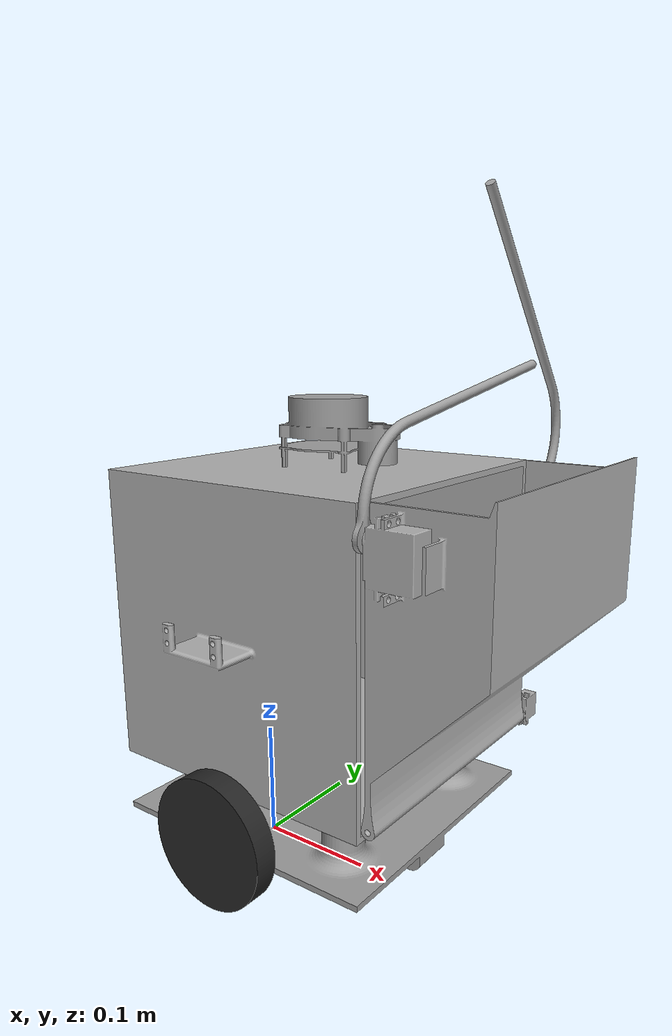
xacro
<?xml version="1.0" ?>
<robot name="wall_e" xmlns:xacro="http://www.ros.org/wiki/xacro">

<xacro:include filename="$(find wall_e_description)/urdf/materials.xacro" />
<xacro:include filename="$(find wall_e_description)/urdf/wall_e.trans" />
<xacro:include filename="$(find wall_e_description)/urdf/wall_e.gazebo" />
<link name="base_link">
  <inertial>
    <origin xyz="0.03306922009986352 0.04109957889568825 0.041731230355942464" rpy="0 0 0"/>
    <mass value="4.787456478250945"/>
    <inertia ixx="0.027048" iyy="0.030516" izz="0.054315" ixy="-0.0" iyz="0.0" ixz="-0.0"/>
  </inertial>
  <visual>
    <origin xyz="0 0 0" rpy="0 0 0"/>
    <geometry>
      <mesh filename="package://wall_e_description/meshes/base_link.stl" scale="0.001 0.001 0.001"/>
    </geometry>
    <material name="steel_satin"/>
  </visual>
  <collision>
    <origin xyz="0 0 0" rpy="0 0 0"/>
    <geometry>
      <mesh filename="package://wall_e_description/meshes/base_link.stl" scale="0.001 0.001 0.001"/>
    </geometry>
  </collision>
</link>

<link name="right_wheel">
  <inertial>
    <origin xyz="2.2009986355014943e-07 -0.010000421104311583 -9.144214505041326e-08" rpy="0 0 0"/>
    <mass value="0.17676171065422966"/>
    <inertia ixx="0.00014" iyy="0.000267" izz="0.00014" ixy="0.0" iyz="-0.0" ixz="-0.0"/>
  </inertial>
  <visual>
    <origin xyz="-0.033069 0.0939 -0.053887" rpy="0 0 0"/>
    <geometry>
      <mesh filename="package://wall_e_description/meshes/right_wheel_1.stl" scale="0.001 0.001 0.001"/>
    </geometry>
    <material name="rubber_soft"/>
  </visual>
  <collision>
    <origin xyz="-0.033069 0.0939 -0.053887" rpy="0 0 0"/>
    <geometry>
      <mesh filename="package://wall_e_description/meshes/right_wheel_1.stl" scale="0.001 0.001 0.001"/>
    </geometry>
  </collision>
</link>

<link name="left_wheel">
  <inertial>
    <origin xyz="2.2009986355014943e-07 0.009999578895688033 -9.144214514755777e-08" rpy="0 0 0"/>
    <mass value="0.17676171065422966"/>
    <inertia ixx="0.00014" iyy="0.000267" izz="0.00014" ixy="-0.0" iyz="0.0" ixz="-0.0"/>
  </inertial>
  <visual>
    <origin xyz="-0.033069 -0.1761 -0.053887" rpy="0 0 0"/>
    <geometry>
      <mesh filename="package://wall_e_description/meshes/left_wheel_1.stl" scale="0.001 0.001 0.001"/>
    </geometry>
    <material name="rubber_soft"/>
  </visual>
  <collision>
    <origin xyz="-0.033069 -0.1761 -0.053887" rpy="0 0 0"/>
    <geometry>
      <mesh filename="package://wall_e_description/meshes/left_wheel_1.stl" scale="0.001 0.001 0.001"/>
    </geometry>
  </collision>
</link>

<link name="bin">
  <inertial>
    <origin xyz="-0.02250444308386567 0.00039161684009678815 0.17469329123226662" rpy="0 0 0"/>
    <mass value="12.102199401060787"/>
    <inertia ixx="0.219187" iyy="0.186064" izz="0.190176" ixy="-0.000701" iyz="0.000516" ixz="0.000585"/>
  </inertial>
  <visual>
    <origin xyz="-0.033069 -0.0411 -0.035387" rpy="0 0 0"/>
    <geometry>
      <mesh filename="package://wall_e_description/meshes/bin_1.stl" scale="0.001 0.001 0.001"/>
    </geometry>
    <material name="silver_default"/>
  </visual>
  <collision>
    <origin xyz="-0.033069 -0.0411 -0.035387" rpy="0 0 0"/>
    <geometry>
      <mesh filename="package://wall_e_description/meshes/bin_1.stl" scale="0.001 0.001 0.001"/>
    </geometry>
  </collision>
</link>

<link name="ydlidar_x4">
  <inertial>
    <origin xyz="0.012454197152355635 -4.2110431169861684e-07 0.03520105078064689" rpy="0 0 0"/>
    <mass value="1.1515616542314233"/>
    <inertia ixx="0.000489" iyy="0.000861" izz="0.000987" ixy="-0.0" iyz="0.0" ixz="0.000148"/>
  </inertial>
  <visual>
    <origin xyz="-0.033069 -0.0411 -0.365387" rpy="0 0 0"/>
    <geometry>
      <mesh filename="package://wall_e_description/meshes/ydlidar_x4_1.stl" scale="0.001 0.001 0.001"/>
    </geometry>
    <material name="steel_satin"/>
  </visual>
  <collision>
    <origin xyz="-0.033069 -0.0411 -0.335387" rpy="0 0 0"/>
    <geometry>
      <mesh filename="package://wall_e_description/meshes/ydlidar_x4_1.stl" scale="0.001 0.001 0.001"/>
    </geometry>
  </collision>
</link>

<link name="pan">
  <inertial>
    <origin xyz="0.04822559678907379 -0.11607817913674341 0.13061240970754556" rpy="0 0 0"/>
    <mass value="3.94125611807655"/>
    <inertia ixx="0.051476" iyy="0.025721" izz="0.03521" ixy="-8.7e-05" iyz="9.5e-05" ixz="-0.006231"/>
  </inertial>
  <visual>
    <origin xyz="-0.164169 -0.157 -0.095987" rpy="0 0 0"/>
    <geometry>
      <mesh filename="package://wall_e_description/meshes/pan__1__1.stl" scale="0.001 0.001 0.001"/>
    </geometry>
    <material name="silver_default"/>
  </visual>
  <collision>
    <origin xyz="-0.164169 -0.157 -0.095987" rpy="0 0 0"/>
    <geometry>
      <mesh filename="package://wall_e_description/meshes/pan__1__1.stl" scale="0.001 0.001 0.001"/>
    </geometry>
  </collision>
</link>

<link name="pan_left_arm">
  <inertial>
    <origin xyz="0.003000245244439148 -0.026606315345525516 0.11294972426483924" rpy="0 0 0"/>
    <mass value="0.10558276566640609"/>
    <inertia ixx="0.000719" iyy="0.000526" izz="0.000194" ixy="0.0" iyz="0.000294" ixz="0.0"/>
  </inertial>
  <visual>
    <origin xyz="-0.168469 -0.171 -0.312605" rpy="0 0 0"/>
    <geometry>
      <mesh filename="package://wall_e_description/meshes/pan_left_arm_1.stl" scale="0.001 0.001 0.001"/>
    </geometry>
    <material name="steel_satin"/>
  </visual>
  <collision>
    <origin xyz="-0.168469 -0.171 -0.312605" rpy="0 0 0"/>
    <geometry>
      <mesh filename="package://wall_e_description/meshes/pan_left_arm_1.stl" scale="0.001 0.001 0.001"/>
    </geometry>
  </collision>
</link>

<link name="pan_right_arm">
  <inertial>
    <origin xyz="0.003000194955287777 0.09335605146506651 0.06644584618966343" rpy="0 0 0"/>
    <mass value="0.10558276566640609"/>
    <inertia ixx="0.000719" iyy="9.9e-05" izz="0.00062" ixy="-0.0" iyz="-0.000215" ixz="-0.0"/>
  </inertial>
  <visual>
    <origin xyz="-0.165969 0.09 -0.314825" rpy="0 0 0"/>
    <geometry>
      <mesh filename="package://wall_e_description/meshes/pan_right_arm_1.stl" scale="0.001 0.001 0.001"/>
    </geometry>
    <material name="steel_satin"/>
  </visual>
  <collision>
    <origin xyz="-0.165969 0.09 -0.314825" rpy="0 0 0"/>
    <geometry>
      <mesh filename="package://wall_e_description/meshes/pan_right_arm_1.stl" scale="0.001 0.001 0.001"/>
    </geometry>
  </collision>
</link>

<joint name="right_drive" type="continuous">
  <origin xyz="0.033069 -0.0939 0.053887" rpy="0 0 0"/>
  <parent link="base_link"/>
  <child link="right_wheel"/>
  <axis xyz="-0.0 1.0 0.0"/>
</joint>

<joint name="left_drive" type="continuous">
  <origin xyz="0.033069 0.1761 0.053887" rpy="0 0 0"/>
  <parent link="base_link"/>
  <child link="left_wheel"/>
  <axis xyz="0.0 1.0 -0.0"/>
</joint>

<joint name="Rigid4" type="fixed">
  <origin xyz="0.033069 0.0411 0.035387" rpy="0 0 0"/>
  <parent link="base_link"/>
  <child link="bin"/>
</joint>

<joint name="Rigid7" type="fixed">
  <origin xyz="0.0 0.0 0.33" rpy="0 0 0"/>
  <parent link="bin"/>
  <child link="ydlidar_x4"/>
</joint>

<joint name="pan_joint" type="revolute">
  <origin xyz="0.1311 0.1159 0.0606" rpy="0 0 0"/>
  <parent link="bin"/>
  <child link="pan"/>
  <axis xyz="0.0 1.0 0.0"/>
  <limit upper="1.570796" lower="0.0" effort="100" velocity="0.1"/>
</joint>

<joint name="left_arm" type="revolute">
  <origin xyz="0.0043 0.014 0.216618" rpy="0 0 0"/>
  <parent link="pan"/>
  <child link="pan_left_arm"/>
  <axis xyz="-1.0 -0.0 -0.0"/>
  <limit upper="2.792527" lower="-0.785398" effort="100" velocity="100"/>
</joint>

<joint name="right_arm" type="revolute">
  <origin xyz="0.0018 -0.247 0.218838" rpy="0 0 0"/>
  <parent link="pan"/>
  <child link="pan_right_arm"/>
  <axis xyz="-1.0 -0.0 -0.0"/>
  <limit upper="0.087266" lower="-3.490659" effort="100" velocity="100"/>
</joint>

</robot>

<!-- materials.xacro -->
<robot name="wall_e" xmlns:xacro="http://www.ros.org/wiki/xacro" >

<material name="silver_default">
  <color rgba="0.700 0.700 0.700 1.000"/>
</material>
<material name="steel_satin">
  <color rgba="0.6274509803921569 0.6274509803921569 0.6274509803921569 1.0"/>
</material>
<material name="rubber_soft">
  <color rgba="0.15294117647058825 0.15294117647058825 0.15294117647058825 1.0"/>
</material>

</robot>

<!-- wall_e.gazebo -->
<robot name="wall_e" xmlns:xacro="http://www.ros.org/wiki/xacro" >

<xacro:property name="body_color" value="Gazebo/Silver" />

<gazebo>
  <plugin name="control" filename="libgazebo_ros_control.so">
    <robotNamespace>/wall_e</robotNamespace>
  </plugin>
</gazebo>

<gazebo reference="base_link">
  <material>${body_color}</material>
  <mu1>0.1</mu1>
  <mu2>0.1</mu2>
  <selfCollide>true</selfCollide>
  <gravity>true</gravity>
</gazebo>

<gazebo reference="right_wheel">
  <material>${body_color}</material>
  <mu1>100</mu1>
  <mu2>100</mu2>
  <selfCollide>true</selfCollide>
</gazebo>

<gazebo reference="left_wheel">
  <material>${body_color}</material>
  <mu1>100</mu1>
  <mu2>100</mu2>
  <selfCollide>true</selfCollide>
</gazebo>

<gazebo reference="bin">
  <material>${body_color}</material>
  <mu1>0.2</mu1>
  <mu2>0.2</mu2>
  <selfCollide>true</selfCollide>
</gazebo>

<gazebo reference="ydlidar_x4">
  <material>${body_color}</material>
  <mu1>0.2</mu1>
  <mu2>0.2</mu2>
  <selfCollide>true</selfCollide>
</gazebo>

<gazebo reference="pan">
  <material>${body_color}</material>
  <mu1>100</mu1>
  <mu2>100</mu2>
  <selfCollide>true</selfCollide>
</gazebo>

<gazebo reference="left_arm">
  <material>${body_color}</material>
  <mu1>0.2</mu1>
  <mu2>0.2</mu2>
  <selfCollide>true</selfCollide>
</gazebo>

<gazebo reference="right_arm">
  <material>${body_color}</material>
  <mu1>0.2</mu1>
  <mu2>0.2</mu2>
  <selfCollide>true</selfCollide>
</gazebo>

<gazebo>
  <plugin name="differential_drive_controller" filename="libgazebo_ros_diff_drive.so">

    <!-- Plugin update rate in Hz -->
    <updateRate>50</updateRate>

    <!-- Name of left joint, defaults to `left_joint` -->
    <leftJoint>left_drive</leftJoint>

    <!-- Name of right joint, defaults to `right_joint` -->
    <rightJoint>right_drive</rightJoint>

    <!-- The distance from the center of one wheel to the other, in meters, defaults to 0.34 m -->
    <wheelSeparation>0.29</wheelSeparation>

    <!-- Diameter of the wheels, in meters, defaults to 0.15 m -->
    <wheelDiameter>0.11</wheelDiameter>

    <!-- Wheel acceleration, in rad/s^2, defaults to 0.0 rad/s^2 -->
    <wheelAcceleration>0.25</wheelAcceleration>

    <!-- Maximum torque which the wheels can produce, in Nm, defaults to 5 Nm -->
    <wheelTorque>7.5</wheelTorque>

    <!-- Topic to receive geometry_msgs/Twist message commands, defaults to `cmd_vel` -->
    <commandTopic>cmd_vel</commandTopic>

    <!-- Topic to publish nav_msgs/Odometry messages, defaults to `odom` -->
    <odometryTopic>odom</odometryTopic>

    <!-- Odometry frame, defaults to `odom` -->
    <odometryFrame>odom</odometryFrame>

    <!-- Robot frame to calculate odometry from, defaults to `base_footprint` -->
    <robotBaseFrame>base_link</robotBaseFrame>

    <!-- Odometry source, 0 for ENCODER, 1 for WORLD, defaults to WORLD -->
    <odometrySource>1</odometrySource>

    <!-- Set to true to publish transforms for the wheel links, defaults to false -->
    <publishWheelTF>true</publishWheelTF>

    <!-- Set to true to publish transforms for the odometry, defaults to true -->
    <publishOdom>true</publishOdom>

    <!-- Set to true to publish sensor_msgs/JointState on /joint_states for the wheel joints, defaults to false -->
    <publishWheelJointState>false</publishWheelJointState>

    <!-- Set to true to swap right and left wheels, defaults to true -->
    <legacyMode>false</legacyMode>
  </plugin>
</gazebo>

<gazebo reference="ydlidar_x4">
    <sensor type="ray" name="head_hokuyo_sensor">
      <pose>0 0 0 0 0 0</pose>
      <visualize>true</visualize>
      <update_rate>20</update_rate>
      <ray>
        <scan>
          <horizontal>
            <samples>7200</samples>
            <resolution>0.25</resolution>
            <min_angle>-3.141592</min_angle>
            <max_angle>3.141592</max_angle>
          </horizontal>
        </scan>
        <range>
          <min>0.12</min>
          <max>20.0</max>
          <resolution>0.01</resolution>
        </range>
        <noise>
          <type>gaussian</type>
          <mean>0.0</mean>
          <stddev>0.01</stddev>
        </noise>
      </ray>
      <plugin name="gazebo_ros_head_hokuyo_controller" filename="libgazebo_ros_laser.so">
        <topicName>/scan</topicName>
        <frameName>ydlidar_x4</frameName>
      </plugin>
    </sensor>
  </gazebo>

</robot>
